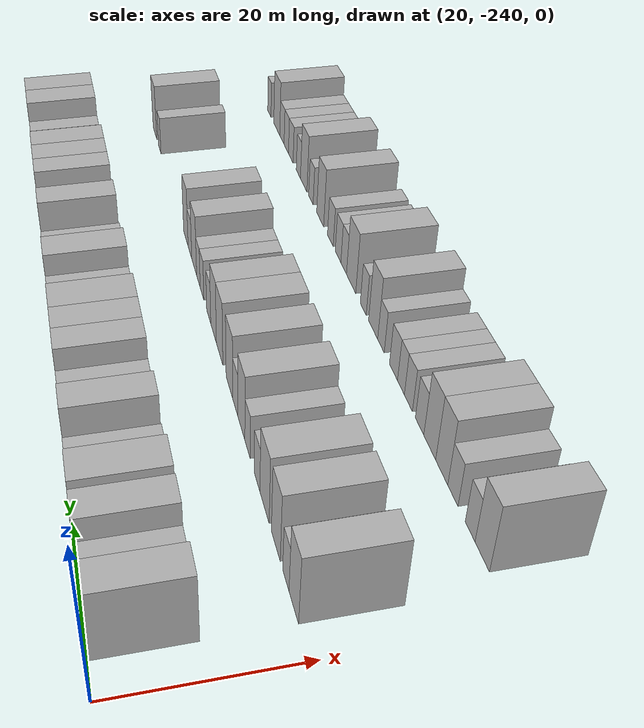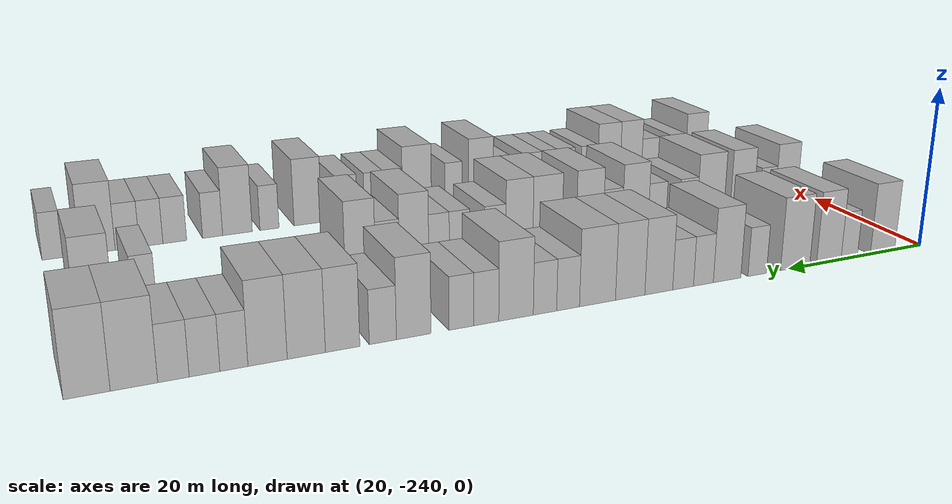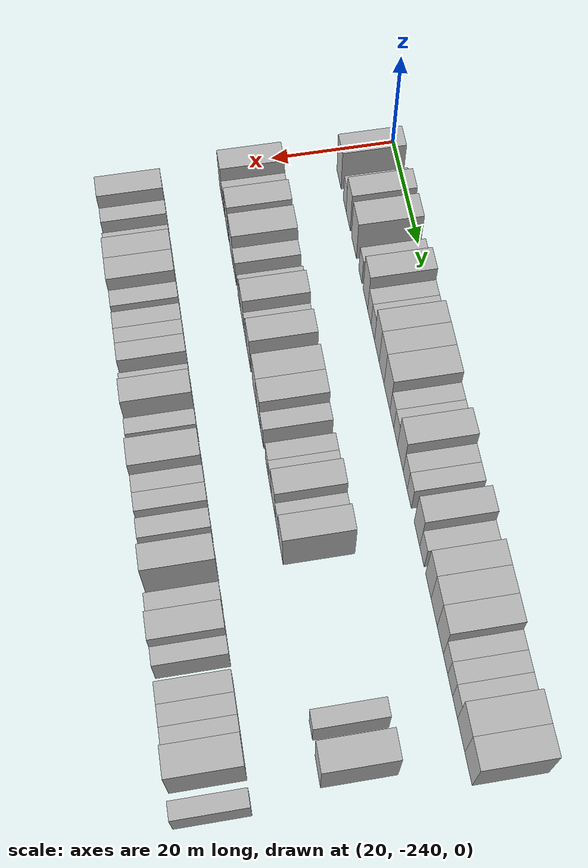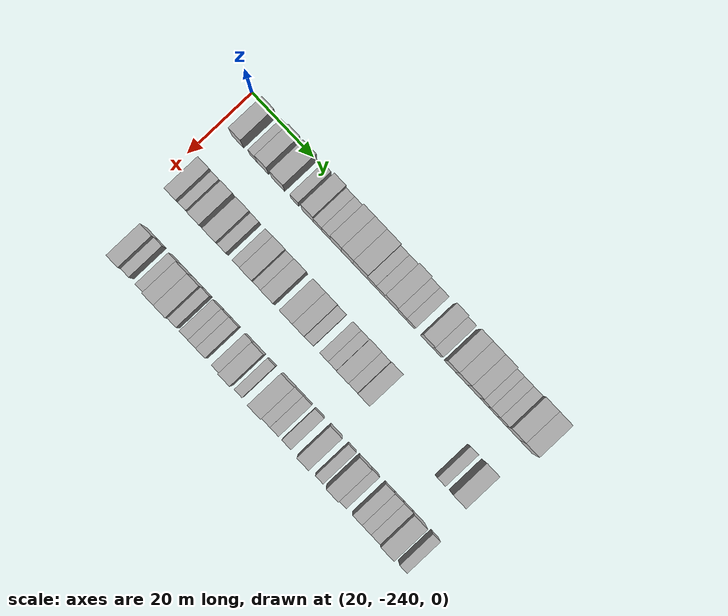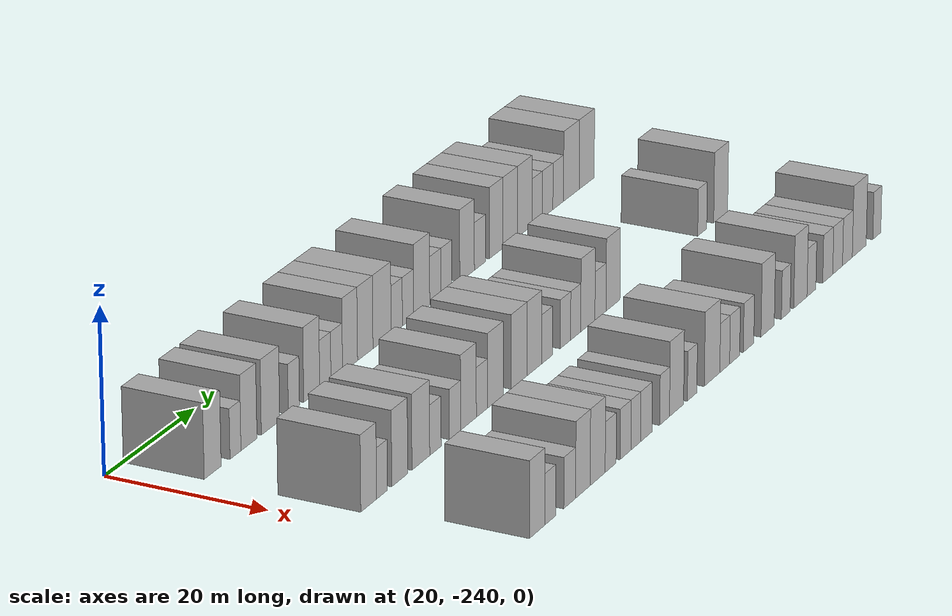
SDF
<sdf version="1.6">
 <world name="default">
  <model name="building_1">
   <static>1</static>
   <pose>25.0000 -234.1049 0 0.000000 0.000000 0.000000</pose>
   <link name="link">
    <pose>0 0 4.50 0 0 0</pose>
    <collision name="collision"><geometry><box><size>10.0000 3.7902 9.0000</size></box></geometry></collision>
    <visual name="visual">
     <cast_shadows>0</cast_shadows>
     <geometry><box><size>10.0000 3.7902 9.0000</size></box></geometry>
     <material>
      <script>
       <uri>model://HANNAS_wall/materials/scripts</uri>
       <uri>model://HANNAS_wall/materials/textures</uri>
       <name>vrc/HANNAS_wall</name>
      </script>
     </material>
    </visual>
   </link>
  </model>
  <model name="building_2">
   <static>1</static>
   <pose>25.0000 -228.9686 0 0.000000 0.000000 0.000000</pose>
   <link name="link">
    <pose>0 0 3.00 0 0 0</pose>
    <collision name="collision"><geometry><box><size>10.0000 2.4824 6.0000</size></box></geometry></collision>
    <visual name="visual">
     <cast_shadows>0</cast_shadows>
     <geometry><box><size>10.0000 2.4824 6.0000</size></box></geometry>
     <material>
      <script>
       <uri>model://HANNAS_wall/materials/scripts</uri>
       <uri>model://HANNAS_wall/materials/textures</uri>
       <name>vrc/HANNAS_wall</name>
      </script>
     </material>
    </visual>
   </link>
  </model>
  <model name="building_3">
   <static>1</static>
   <pose>25.0000 -225.8996 0 0.000000 0.000000 0.000000</pose>
   <link name="link">
    <pose>0 0 4.50 0 0 0</pose>
    <collision name="collision"><geometry><box><size>10.0000 3.6556 9.0000</size></box></geometry></collision>
    <visual name="visual">
     <cast_shadows>0</cast_shadows>
     <geometry><box><size>10.0000 3.6556 9.0000</size></box></geometry>
     <material>
      <script>
       <uri>model://HANNAS_wall/materials/scripts</uri>
       <uri>model://HANNAS_wall/materials/textures</uri>
       <name>vrc/HANNAS_wall</name>
      </script>
     </material>
    </visual>
   </link>
  </model>
  <model name="building_4">
   <static>1</static>
   <pose>25.0000 -220.9439 0 0.000000 0.000000 0.000000</pose>
   <link name="link">
    <pose>0 0 4.50 0 0 0</pose>
    <collision name="collision"><geometry><box><size>10.0000 4.2559 9.0000</size></box></geometry></collision>
    <visual name="visual">
     <cast_shadows>0</cast_shadows>
     <geometry><box><size>10.0000 4.2559 9.0000</size></box></geometry>
     <material>
      <script>
       <uri>model://HANNAS_wall/materials/scripts</uri>
       <uri>model://HANNAS_wall/materials/textures</uri>
       <name>vrc/HANNAS_wall</name>
      </script>
     </material>
    </visual>
   </link>
  </model>
  <model name="building_5">
   <static>1</static>
   <pose>25.0000 -215.5055 0 0.000000 0.000000 0.000000</pose>
   <link name="link">
    <pose>0 0 3.00 0 0 0</pose>
    <collision name="collision"><geometry><box><size>10.0000 2.6209 6.0000</size></box></geometry></collision>
    <visual name="visual">
     <cast_shadows>0</cast_shadows>
     <geometry><box><size>10.0000 2.6209 6.0000</size></box></geometry>
     <material>
      <script>
       <uri>model://HANNAS_wall/materials/scripts</uri>
       <uri>model://HANNAS_wall/materials/textures</uri>
       <name>vrc/HANNAS_wall</name>
      </script>
     </material>
    </visual>
   </link>
  </model>
  <model name="building_6">
   <static>1</static>
   <pose>25.0000 -211.3009 0 0.000000 0.000000 0.000000</pose>
   <link name="link">
    <pose>0 0 4.50 0 0 0</pose>
    <collision name="collision"><geometry><box><size>10.0000 3.7882 9.0000</size></box></geometry></collision>
    <visual name="visual">
     <cast_shadows>0</cast_shadows>
     <geometry><box><size>10.0000 3.7882 9.0000</size></box></geometry>
     <material>
      <script>
       <uri>model://HANNAS_wall/materials/scripts</uri>
       <uri>model://HANNAS_wall/materials/textures</uri>
       <name>vrc/HANNAS_wall</name>
      </script>
     </material>
    </visual>
   </link>
  </model>
  <model name="building_7">
   <static>1</static>
   <pose>25.0000 -208.0643 0 0.000000 0.000000 0.000000</pose>
   <link name="link">
    <pose>0 0 3.00 0 0 0</pose>
    <collision name="collision"><geometry><box><size>10.0000 2.6851 6.0000</size></box></geometry></collision>
    <visual name="visual">
     <cast_shadows>0</cast_shadows>
     <geometry><box><size>10.0000 2.6851 6.0000</size></box></geometry>
     <material>
      <script>
       <uri>model://HANNAS_wall/materials/scripts</uri>
       <uri>model://HANNAS_wall/materials/textures</uri>
       <name>vrc/HANNAS_wall</name>
      </script>
     </material>
    </visual>
   </link>
  </model>
  <model name="building_8">
   <static>1</static>
   <pose>25.0000 -205.3315 0 0.000000 0.000000 0.000000</pose>
   <link name="link">
    <pose>0 0 3.00 0 0 0</pose>
    <collision name="collision"><geometry><box><size>10.0000 2.7805 6.0000</size></box></geometry></collision>
    <visual name="visual">
     <cast_shadows>0</cast_shadows>
     <geometry><box><size>10.0000 2.7805 6.0000</size></box></geometry>
     <material>
      <script>
       <uri>model://HANNAS_wall/materials/scripts</uri>
       <uri>model://HANNAS_wall/materials/textures</uri>
       <name>vrc/HANNAS_wall</name>
      </script>
     </material>
    </visual>
   </link>
  </model>
  <model name="building_9">
   <static>1</static>
   <pose>25.0000 -202.1189 0 0.000000 0.000000 0.000000</pose>
   <link name="link">
    <pose>0 0 4.50 0 0 0</pose>
    <collision name="collision"><geometry><box><size>10.0000 3.6448 9.0000</size></box></geometry></collision>
    <visual name="visual">
     <cast_shadows>0</cast_shadows>
     <geometry><box><size>10.0000 3.6448 9.0000</size></box></geometry>
     <material>
      <script>
       <uri>model://HANNAS_wall/materials/scripts</uri>
       <uri>model://HANNAS_wall/materials/textures</uri>
       <name>vrc/HANNAS_wall</name>
      </script>
     </material>
    </visual>
   </link>
  </model>
  <model name="building_10">
   <static>1</static>
   <pose>25.0000 -198.4157 0 0.000000 0.000000 0.000000</pose>
   <link name="link">
    <pose>0 0 4.50 0 0 0</pose>
    <collision name="collision"><geometry><box><size>10.0000 3.7617 9.0000</size></box></geometry></collision>
    <visual name="visual">
     <cast_shadows>0</cast_shadows>
     <geometry><box><size>10.0000 3.7617 9.0000</size></box></geometry>
     <material>
      <script>
       <uri>model://HANNAS_wall/materials/scripts</uri>
       <uri>model://HANNAS_wall/materials/textures</uri>
       <name>vrc/HANNAS_wall</name>
      </script>
     </material>
    </visual>
   </link>
  </model>
  <model name="building_11">
   <static>1</static>
   <pose>25.0000 -194.2861 0 0.000000 0.000000 0.000000</pose>
   <link name="link">
    <pose>0 0 4.50 0 0 0</pose>
    <collision name="collision"><geometry><box><size>10.0000 4.4974 9.0000</size></box></geometry></collision>
    <visual name="visual">
     <cast_shadows>0</cast_shadows>
     <geometry><box><size>10.0000 4.4974 9.0000</size></box></geometry>
     <material>
      <script>
       <uri>model://HANNAS_wall/materials/scripts</uri>
       <uri>model://HANNAS_wall/materials/textures</uri>
       <name>vrc/HANNAS_wall</name>
      </script>
     </material>
    </visual>
   </link>
  </model>
  <model name="building_12">
   <static>1</static>
   <pose>25.0000 -190.6346 0 0.000000 0.000000 0.000000</pose>
   <link name="link">
    <pose>0 0 3.00 0 0 0</pose>
    <collision name="collision"><geometry><box><size>10.0000 2.8056 6.0000</size></box></geometry></collision>
    <visual name="visual">
     <cast_shadows>0</cast_shadows>
     <geometry><box><size>10.0000 2.8056 6.0000</size></box></geometry>
     <material>
      <script>
       <uri>model://HANNAS_wall/materials/scripts</uri>
       <uri>model://HANNAS_wall/materials/textures</uri>
       <name>vrc/HANNAS_wall</name>
      </script>
     </material>
    </visual>
   </link>
  </model>
  <model name="building_13">
   <static>1</static>
   <pose>25.0000 -187.8267 0 0.000000 0.000000 0.000000</pose>
   <link name="link">
    <pose>0 0 3.00 0 0 0</pose>
    <collision name="collision"><geometry><box><size>10.0000 2.8101 6.0000</size></box></geometry></collision>
    <visual name="visual">
     <cast_shadows>0</cast_shadows>
     <geometry><box><size>10.0000 2.8101 6.0000</size></box></geometry>
     <material>
      <script>
       <uri>model://HANNAS_wall/materials/scripts</uri>
       <uri>model://HANNAS_wall/materials/textures</uri>
       <name>vrc/HANNAS_wall</name>
      </script>
     </material>
    </visual>
   </link>
  </model>
  <model name="building_14">
   <static>1</static>
   <pose>25.0000 -184.3808 0 0.000000 0.000000 0.000000</pose>
   <link name="link">
    <pose>0 0 4.50 0 0 0</pose>
    <collision name="collision"><geometry><box><size>10.0000 4.0818 9.0000</size></box></geometry></collision>
    <visual name="visual">
     <cast_shadows>0</cast_shadows>
     <geometry><box><size>10.0000 4.0818 9.0000</size></box></geometry>
     <material>
      <script>
       <uri>model://HANNAS_wall/materials/scripts</uri>
       <uri>model://HANNAS_wall/materials/textures</uri>
       <name>vrc/HANNAS_wall</name>
      </script>
     </material>
    </visual>
   </link>
  </model>
  <model name="building_15">
   <static>1</static>
   <pose>25.0000 -180.9060 0 0.000000 0.000000 0.000000</pose>
   <link name="link">
    <pose>0 0 3.00 0 0 0</pose>
    <collision name="collision"><geometry><box><size>10.0000 2.8676 6.0000</size></box></geometry></collision>
    <visual name="visual">
     <cast_shadows>0</cast_shadows>
     <geometry><box><size>10.0000 2.8676 6.0000</size></box></geometry>
     <material>
      <script>
       <uri>model://HANNAS_wall/materials/scripts</uri>
       <uri>model://HANNAS_wall/materials/textures</uri>
       <name>vrc/HANNAS_wall</name>
      </script>
     </material>
    </visual>
   </link>
  </model>
  <model name="building_16">
   <static>1</static>
   <pose>25.0000 -178.0549 0 0.000000 0.000000 0.000000</pose>
   <link name="link">
    <pose>0 0 3.00 0 0 0</pose>
    <collision name="collision"><geometry><box><size>10.0000 2.8347 6.0000</size></box></geometry></collision>
    <visual name="visual">
     <cast_shadows>0</cast_shadows>
     <geometry><box><size>10.0000 2.8347 6.0000</size></box></geometry>
     <material>
      <script>
       <uri>model://HANNAS_wall/materials/scripts</uri>
       <uri>model://HANNAS_wall/materials/textures</uri>
       <name>vrc/HANNAS_wall</name>
      </script>
     </material>
    </visual>
   </link>
  </model>
  <model name="building_17">
   <static>1</static>
   <pose>25.0000 -172.7347 0 0.000000 0.000000 0.000000</pose>
   <link name="link">
    <pose>0 0 4.50 0 0 0</pose>
    <collision name="collision"><geometry><box><size>10.0000 3.8056 9.0000</size></box></geometry></collision>
    <visual name="visual">
     <cast_shadows>0</cast_shadows>
     <geometry><box><size>10.0000 3.8056 9.0000</size></box></geometry>
     <material>
      <script>
       <uri>model://HANNAS_wall/materials/scripts</uri>
       <uri>model://HANNAS_wall/materials/textures</uri>
       <name>vrc/HANNAS_wall</name>
      </script>
     </material>
    </visual>
   </link>
  </model>
  <model name="building_18">
   <static>1</static>
   <pose>25.0000 -169.3702 0 0.000000 0.000000 0.000000</pose>
   <link name="link">
    <pose>0 0 3.00 0 0 0</pose>
    <collision name="collision"><geometry><box><size>10.0000 2.9234 6.0000</size></box></geometry></collision>
    <visual name="visual">
     <cast_shadows>0</cast_shadows>
     <geometry><box><size>10.0000 2.9234 6.0000</size></box></geometry>
     <material>
      <script>
       <uri>model://HANNAS_wall/materials/scripts</uri>
       <uri>model://HANNAS_wall/materials/textures</uri>
       <name>vrc/HANNAS_wall</name>
      </script>
     </material>
    </visual>
   </link>
  </model>
  <model name="building_19">
   <static>1</static>
   <pose>25.0000 -165.1060 0 0.000000 0.000000 0.000000</pose>
   <link name="link">
    <pose>0 0 4.50 0 0 0</pose>
    <collision name="collision"><geometry><box><size>10.0000 3.6051 9.0000</size></box></geometry></collision>
    <visual name="visual">
     <cast_shadows>0</cast_shadows>
     <geometry><box><size>10.0000 3.6051 9.0000</size></box></geometry>
     <material>
      <script>
       <uri>model://HANNAS_wall/materials/scripts</uri>
       <uri>model://HANNAS_wall/materials/textures</uri>
       <name>vrc/HANNAS_wall</name>
      </script>
     </material>
    </visual>
   </link>
  </model>
  <model name="building_20">
   <static>1</static>
   <pose>25.0000 -161.3523 0 0.000000 0.000000 0.000000</pose>
   <link name="link">
    <pose>0 0 4.50 0 0 0</pose>
    <collision name="collision"><geometry><box><size>10.0000 3.9022 9.0000</size></box></geometry></collision>
    <visual name="visual">
     <cast_shadows>0</cast_shadows>
     <geometry><box><size>10.0000 3.9022 9.0000</size></box></geometry>
     <material>
      <script>
       <uri>model://HANNAS_wall/materials/scripts</uri>
       <uri>model://HANNAS_wall/materials/textures</uri>
       <name>vrc/HANNAS_wall</name>
      </script>
     </material>
    </visual>
   </link>
  </model>
  <model name="building_21">
   <static>1</static>
   <pose>25.0000 -157.4447 0 0.000000 0.000000 0.000000</pose>
   <link name="link">
    <pose>0 0 4.50 0 0 0</pose>
    <collision name="collision"><geometry><box><size>10.0000 3.9131 9.0000</size></box></geometry></collision>
    <visual name="visual">
     <cast_shadows>0</cast_shadows>
     <geometry><box><size>10.0000 3.9131 9.0000</size></box></geometry>
     <material>
      <script>
       <uri>model://HANNAS_wall/materials/scripts</uri>
       <uri>model://HANNAS_wall/materials/textures</uri>
       <name>vrc/HANNAS_wall</name>
      </script>
     </material>
    </visual>
   </link>
  </model>
  <model name="building_22">
   <static>1</static>
   <pose>25.0000 -154.1215 0 0.000000 0.000000 0.000000</pose>
   <link name="link">
    <pose>0 0 3.00 0 0 0</pose>
    <collision name="collision"><geometry><box><size>10.0000 2.7331 6.0000</size></box></geometry></collision>
    <visual name="visual">
     <cast_shadows>0</cast_shadows>
     <geometry><box><size>10.0000 2.7331 6.0000</size></box></geometry>
     <material>
      <script>
       <uri>model://HANNAS_wall/materials/scripts</uri>
       <uri>model://HANNAS_wall/materials/textures</uri>
       <name>vrc/HANNAS_wall</name>
      </script>
     </material>
    </visual>
   </link>
  </model>
  <model name="building_23">
   <static>1</static>
   <pose>25.0000 -151.2826 0 0.000000 0.000000 0.000000</pose>
   <link name="link">
    <pose>0 0 3.00 0 0 0</pose>
    <collision name="collision"><geometry><box><size>10.0000 2.9448 6.0000</size></box></geometry></collision>
    <visual name="visual">
     <cast_shadows>0</cast_shadows>
     <geometry><box><size>10.0000 2.9448 6.0000</size></box></geometry>
     <material>
      <script>
       <uri>model://HANNAS_wall/materials/scripts</uri>
       <uri>model://HANNAS_wall/materials/textures</uri>
       <name>vrc/HANNAS_wall</name>
      </script>
     </material>
    </visual>
   </link>
  </model>
  <model name="building_24">
   <static>1</static>
   <pose>25.0000 -148.3363 0 0.000000 0.000000 0.000000</pose>
   <link name="link">
    <pose>0 0 3.00 0 0 0</pose>
    <collision name="collision"><geometry><box><size>10.0000 2.9479 6.0000</size></box></geometry></collision>
    <visual name="visual">
     <cast_shadows>0</cast_shadows>
     <geometry><box><size>10.0000 2.9479 6.0000</size></box></geometry>
     <material>
      <script>
       <uri>model://HANNAS_wall/materials/scripts</uri>
       <uri>model://HANNAS_wall/materials/textures</uri>
       <name>vrc/HANNAS_wall</name>
      </script>
     </material>
    </visual>
   </link>
  </model>
  <model name="building_25">
   <static>1</static>
   <pose>25.0000 -144.6904 0 0.000000 0.000000 0.000000</pose>
   <link name="link">
    <pose>0 0 4.50 0 0 0</pose>
    <collision name="collision"><geometry><box><size>10.0000 4.3439 9.0000</size></box></geometry></collision>
    <visual name="visual">
     <cast_shadows>0</cast_shadows>
     <geometry><box><size>10.0000 4.3439 9.0000</size></box></geometry>
     <material>
      <script>
       <uri>model://HANNAS_wall/materials/scripts</uri>
       <uri>model://HANNAS_wall/materials/textures</uri>
       <name>vrc/HANNAS_wall</name>
      </script>
     </material>
    </visual>
   </link>
  </model>
  <model name="building_26">
   <static>1</static>
   <pose>25.0000 -140.4186 0 0.000000 0.000000 0.000000</pose>
   <link name="link">
    <pose>0 0 4.50 0 0 0</pose>
    <collision name="collision"><geometry><box><size>10.0000 4.1998 9.0000</size></box></geometry></collision>
    <visual name="visual">
     <cast_shadows>0</cast_shadows>
     <geometry><box><size>10.0000 4.1998 9.0000</size></box></geometry>
     <material>
      <script>
       <uri>model://HANNAS_wall/materials/scripts</uri>
       <uri>model://HANNAS_wall/materials/textures</uri>
       <name>vrc/HANNAS_wall</name>
      </script>
     </material>
    </visual>
   </link>
  </model>
  <model name="building_115">
   <static>1</static>
   <pose>44.0000 -234.1698 0 0.000000 0.000000 0.000000</pose>
   <link name="link">
    <pose>0 0 4.50 0 0 0</pose>
    <collision name="collision"><geometry><box><size>10.0000 3.6604 9.0000</size></box></geometry></collision>
    <visual name="visual">
     <cast_shadows>0</cast_shadows>
     <geometry><box><size>10.0000 3.6604 9.0000</size></box></geometry>
     <material>
      <script>
       <uri>model://HANNAS_wall/materials/scripts</uri>
       <uri>model://HANNAS_wall/materials/textures</uri>
       <name>vrc/HANNAS_wall</name>
      </script>
     </material>
    </visual>
   </link>
  </model>
  <model name="building_116">
   <static>1</static>
   <pose>44.0000 -231.0742 0 0.000000 0.000000 0.000000</pose>
   <link name="link">
    <pose>0 0 3.00 0 0 0</pose>
    <collision name="collision"><geometry><box><size>10.0000 2.5307 6.0000</size></box></geometry></collision>
    <visual name="visual">
     <cast_shadows>0</cast_shadows>
     <geometry><box><size>10.0000 2.5307 6.0000</size></box></geometry>
     <material>
      <script>
       <uri>model://HANNAS_wall/materials/scripts</uri>
       <uri>model://HANNAS_wall/materials/textures</uri>
       <name>vrc/HANNAS_wall</name>
      </script>
     </material>
    </visual>
   </link>
  </model>
  <model name="building_117">
   <static>1</static>
   <pose>44.0000 -226.9238 0 0.000000 0.000000 0.000000</pose>
   <link name="link">
    <pose>0 0 4.50 0 0 0</pose>
    <collision name="collision"><geometry><box><size>10.0000 3.7701 9.0000</size></box></geometry></collision>
    <visual name="visual">
     <cast_shadows>0</cast_shadows>
     <geometry><box><size>10.0000 3.7701 9.0000</size></box></geometry>
     <material>
      <script>
       <uri>model://HANNAS_wall/materials/scripts</uri>
       <uri>model://HANNAS_wall/materials/textures</uri>
       <name>vrc/HANNAS_wall</name>
      </script>
     </material>
    </visual>
   </link>
  </model>
  <model name="building_118">
   <static>1</static>
   <pose>44.0000 -221.9182 0 0.000000 0.000000 0.000000</pose>
   <link name="link">
    <pose>0 0 4.50 0 0 0</pose>
    <collision name="collision"><geometry><box><size>10.0000 4.2412 9.0000</size></box></geometry></collision>
    <visual name="visual">
     <cast_shadows>0</cast_shadows>
     <geometry><box><size>10.0000 4.2412 9.0000</size></box></geometry>
     <material>
      <script>
       <uri>model://HANNAS_wall/materials/scripts</uri>
       <uri>model://HANNAS_wall/materials/textures</uri>
       <name>vrc/HANNAS_wall</name>
      </script>
     </material>
    </visual>
   </link>
  </model>
  <model name="building_119">
   <static>1</static>
   <pose>44.0000 -218.4153 0 0.000000 0.000000 0.000000</pose>
   <link name="link">
    <pose>0 0 3.00 0 0 0</pose>
    <collision name="collision"><geometry><box><size>10.0000 2.7646 6.0000</size></box></geometry></collision>
    <visual name="visual">
     <cast_shadows>0</cast_shadows>
     <geometry><box><size>10.0000 2.7646 6.0000</size></box></geometry>
     <material>
      <script>
       <uri>model://HANNAS_wall/materials/scripts</uri>
       <uri>model://HANNAS_wall/materials/textures</uri>
       <name>vrc/HANNAS_wall</name>
      </script>
     </material>
    </visual>
   </link>
  </model>
  <model name="building_120">
   <static>1</static>
   <pose>44.0000 -213.6775 0 0.000000 0.000000 0.000000</pose>
   <link name="link">
    <pose>0 0 3.00 0 0 0</pose>
    <collision name="collision"><geometry><box><size>10.0000 2.7109 6.0000</size></box></geometry></collision>
    <visual name="visual">
     <cast_shadows>0</cast_shadows>
     <geometry><box><size>10.0000 2.7109 6.0000</size></box></geometry>
     <material>
      <script>
       <uri>model://HANNAS_wall/materials/scripts</uri>
       <uri>model://HANNAS_wall/materials/textures</uri>
       <name>vrc/HANNAS_wall</name>
      </script>
     </material>
    </visual>
   </link>
  </model>
  <model name="building_121">
   <static>1</static>
   <pose>44.0000 -210.3874 0 0.000000 0.000000 0.000000</pose>
   <link name="link">
    <pose>0 0 4.50 0 0 0</pose>
    <collision name="collision"><geometry><box><size>10.0000 3.8692 9.0000</size></box></geometry></collision>
    <visual name="visual">
     <cast_shadows>0</cast_shadows>
     <geometry><box><size>10.0000 3.8692 9.0000</size></box></geometry>
     <material>
      <script>
       <uri>model://HANNAS_wall/materials/scripts</uri>
       <uri>model://HANNAS_wall/materials/textures</uri>
       <name>vrc/HANNAS_wall</name>
      </script>
     </material>
    </visual>
   </link>
  </model>
  <model name="building_122">
   <static>1</static>
   <pose>44.0000 -207.0543 0 0.000000 0.000000 0.000000</pose>
   <link name="link">
    <pose>0 0 3.00 0 0 0</pose>
    <collision name="collision"><geometry><box><size>10.0000 2.7970 6.0000</size></box></geometry></collision>
    <visual name="visual">
     <cast_shadows>0</cast_shadows>
     <geometry><box><size>10.0000 2.7970 6.0000</size></box></geometry>
     <material>
      <script>
       <uri>model://HANNAS_wall/materials/scripts</uri>
       <uri>model://HANNAS_wall/materials/textures</uri>
       <name>vrc/HANNAS_wall</name>
      </script>
     </material>
    </visual>
   </link>
  </model>
  <model name="building_123">
   <static>1</static>
   <pose>44.0000 -203.7124 0 0.000000 0.000000 0.000000</pose>
   <link name="link">
    <pose>0 0 4.50 0 0 0</pose>
    <collision name="collision"><geometry><box><size>10.0000 3.8867 9.0000</size></box></geometry></collision>
    <visual name="visual">
     <cast_shadows>0</cast_shadows>
     <geometry><box><size>10.0000 3.8867 9.0000</size></box></geometry>
     <material>
      <script>
       <uri>model://HANNAS_wall/materials/scripts</uri>
       <uri>model://HANNAS_wall/materials/textures</uri>
       <name>vrc/HANNAS_wall</name>
      </script>
     </material>
    </visual>
   </link>
  </model>
  <model name="building_124">
   <static>1</static>
   <pose>44.0000 -197.7276 0 0.000000 0.000000 0.000000</pose>
   <link name="link">
    <pose>0 0 4.50 0 0 0</pose>
    <collision name="collision"><geometry><box><size>10.0000 4.0828 9.0000</size></box></geometry></collision>
    <visual name="visual">
     <cast_shadows>0</cast_shadows>
     <geometry><box><size>10.0000 4.0828 9.0000</size></box></geometry>
     <material>
      <script>
       <uri>model://HANNAS_wall/materials/scripts</uri>
       <uri>model://HANNAS_wall/materials/textures</uri>
       <name>vrc/HANNAS_wall</name>
      </script>
     </material>
    </visual>
   </link>
  </model>
  <model name="building_125">
   <static>1</static>
   <pose>44.0000 -193.8281 0 0.000000 0.000000 0.000000</pose>
   <link name="link">
    <pose>0 0 4.50 0 0 0</pose>
    <collision name="collision"><geometry><box><size>10.0000 3.7161 9.0000</size></box></geometry></collision>
    <visual name="visual">
     <cast_shadows>0</cast_shadows>
     <geometry><box><size>10.0000 3.7161 9.0000</size></box></geometry>
     <material>
      <script>
       <uri>model://HANNAS_wall/materials/scripts</uri>
       <uri>model://HANNAS_wall/materials/textures</uri>
       <name>vrc/HANNAS_wall</name>
      </script>
     </material>
    </visual>
   </link>
  </model>
  <model name="building_126">
   <static>1</static>
   <pose>44.0000 -190.5547 0 0.000000 0.000000 0.000000</pose>
   <link name="link">
    <pose>0 0 3.00 0 0 0</pose>
    <collision name="collision"><geometry><box><size>10.0000 2.8307 6.0000</size></box></geometry></collision>
    <visual name="visual">
     <cast_shadows>0</cast_shadows>
     <geometry><box><size>10.0000 2.8307 6.0000</size></box></geometry>
     <material>
      <script>
       <uri>model://HANNAS_wall/materials/scripts</uri>
       <uri>model://HANNAS_wall/materials/textures</uri>
       <name>vrc/HANNAS_wall</name>
      </script>
     </material>
    </visual>
   </link>
  </model>
  <model name="building_127">
   <static>1</static>
   <pose>44.0000 -185.8024 0 0.000000 0.000000 0.000000</pose>
   <link name="link">
    <pose>0 0 3.00 0 0 0</pose>
    <collision name="collision"><geometry><box><size>10.0000 2.6739 6.0000</size></box></geometry></collision>
    <visual name="visual">
     <cast_shadows>0</cast_shadows>
     <geometry><box><size>10.0000 2.6739 6.0000</size></box></geometry>
     <material>
      <script>
       <uri>model://HANNAS_wall/materials/scripts</uri>
       <uri>model://HANNAS_wall/materials/textures</uri>
       <name>vrc/HANNAS_wall</name>
      </script>
     </material>
    </visual>
   </link>
  </model>
  <model name="building_128">
   <static>1</static>
   <pose>44.0000 -183.1321 0 0.000000 0.000000 0.000000</pose>
   <link name="link">
    <pose>0 0 3.00 0 0 0</pose>
    <collision name="collision"><geometry><box><size>10.0000 2.6668 6.0000</size></box></geometry></collision>
    <visual name="visual">
     <cast_shadows>0</cast_shadows>
     <geometry><box><size>10.0000 2.6668 6.0000</size></box></geometry>
     <material>
      <script>
       <uri>model://HANNAS_wall/materials/scripts</uri>
       <uri>model://HANNAS_wall/materials/textures</uri>
       <name>vrc/HANNAS_wall</name>
      </script>
     </material>
    </visual>
   </link>
  </model>
  <model name="building_129">
   <static>1</static>
   <pose>44.0000 -179.9218 0 0.000000 0.000000 0.000000</pose>
   <link name="link">
    <pose>0 0 4.50 0 0 0</pose>
    <collision name="collision"><geometry><box><size>10.0000 3.7537 9.0000</size></box></geometry></collision>
    <visual name="visual">
     <cast_shadows>0</cast_shadows>
     <geometry><box><size>10.0000 3.7537 9.0000</size></box></geometry>
     <material>
      <script>
       <uri>model://HANNAS_wall/materials/scripts</uri>
       <uri>model://HANNAS_wall/materials/textures</uri>
       <name>vrc/HANNAS_wall</name>
      </script>
     </material>
    </visual>
   </link>
  </model>
  <model name="building_130">
   <static>1</static>
   <pose>44.0000 -176.5550 0 0.000000 0.000000 0.000000</pose>
   <link name="link">
    <pose>0 0 3.00 0 0 0</pose>
    <collision name="collision"><geometry><box><size>10.0000 2.9799 6.0000</size></box></geometry></collision>
    <visual name="visual">
     <cast_shadows>0</cast_shadows>
     <geometry><box><size>10.0000 2.9799 6.0000</size></box></geometry>
     <material>
      <script>
       <uri>model://HANNAS_wall/materials/scripts</uri>
       <uri>model://HANNAS_wall/materials/textures</uri>
       <name>vrc/HANNAS_wall</name>
      </script>
     </material>
    </visual>
   </link>
  </model>
  <model name="building_131">
   <static>1</static>
   <pose>44.0000 -173.1998 0 0.000000 0.000000 0.000000</pose>
   <link name="link">
    <pose>0 0 4.50 0 0 0</pose>
    <collision name="collision"><geometry><box><size>10.0000 3.7306 9.0000</size></box></geometry></collision>
    <visual name="visual">
     <cast_shadows>0</cast_shadows>
     <geometry><box><size>10.0000 3.7306 9.0000</size></box></geometry>
     <material>
      <script>
       <uri>model://HANNAS_wall/materials/scripts</uri>
       <uri>model://HANNAS_wall/materials/textures</uri>
       <name>vrc/HANNAS_wall</name>
      </script>
     </material>
    </visual>
   </link>
  </model>
  <model name="building_132">
   <static>1</static>
   <pose>44.0000 -148.4813 0 0.000000 0.000000 0.000000</pose>
   <link name="link">
    <pose>0 0 3.00 0 0 0</pose>
    <collision name="collision"><geometry><box><size>10.0000 2.5688 6.0000</size></box></geometry></collision>
    <visual name="visual">
     <cast_shadows>0</cast_shadows>
     <geometry><box><size>10.0000 2.5688 6.0000</size></box></geometry>
     <material>
      <script>
       <uri>model://HANNAS_wall/materials/scripts</uri>
       <uri>model://HANNAS_wall/materials/textures</uri>
       <name>vrc/HANNAS_wall</name>
      </script>
     </material>
    </visual>
   </link>
  </model>
  <model name="building_133">
   <static>1</static>
   <pose>44.0000 -143.1793 0 0.000000 0.000000 0.000000</pose>
   <link name="link">
    <pose>0 0 4.50 0 0 0</pose>
    <collision name="collision"><geometry><box><size>10.0000 4.0354 9.0000</size></box></geometry></collision>
    <visual name="visual">
     <cast_shadows>0</cast_shadows>
     <geometry><box><size>10.0000 4.0354 9.0000</size></box></geometry>
     <material>
      <script>
       <uri>model://HANNAS_wall/materials/scripts</uri>
       <uri>model://HANNAS_wall/materials/textures</uri>
       <name>vrc/HANNAS_wall</name>
      </script>
     </material>
    </visual>
   </link>
  </model>
  <model name="building_231">
   <static>1</static>
   <pose>63.0000 -232.1592 0 0.000000 0.000000 0.000000</pose>
   <link name="link">
    <pose>0 0 4.50 0 0 0</pose>
    <collision name="collision"><geometry><box><size>10.0000 3.6816 9.0000</size></box></geometry></collision>
    <visual name="visual">
     <cast_shadows>0</cast_shadows>
     <geometry><box><size>10.0000 3.6816 9.0000</size></box></geometry>
     <material>
      <script>
       <uri>model://HANNAS_wall/materials/scripts</uri>
       <uri>model://HANNAS_wall/materials/textures</uri>
       <name>vrc/HANNAS_wall</name>
      </script>
     </material>
    </visual>
   </link>
  </model>
  <model name="building_232">
   <static>1</static>
   <pose>63.0000 -229.0123 0 0.000000 0.000000 0.000000</pose>
   <link name="link">
    <pose>0 0 3.00 0 0 0</pose>
    <collision name="collision"><geometry><box><size>10.0000 2.6123 6.0000</size></box></geometry></collision>
    <visual name="visual">
     <cast_shadows>0</cast_shadows>
     <geometry><box><size>10.0000 2.6123 6.0000</size></box></geometry>
     <material>
      <script>
       <uri>model://HANNAS_wall/materials/scripts</uri>
       <uri>model://HANNAS_wall/materials/textures</uri>
       <name>vrc/HANNAS_wall</name>
      </script>
     </material>
    </visual>
   </link>
  </model>
  <model name="building_233">
   <static>1</static>
   <pose>63.0000 -224.2429 0 0.000000 0.000000 0.000000</pose>
   <link name="link">
    <pose>0 0 3.00 0 0 0</pose>
    <collision name="collision"><geometry><box><size>10.0000 2.9264 6.0000</size></box></geometry></collision>
    <visual name="visual">
     <cast_shadows>0</cast_shadows>
     <geometry><box><size>10.0000 2.9264 6.0000</size></box></geometry>
     <material>
      <script>
       <uri>model://HANNAS_wall/materials/scripts</uri>
       <uri>model://HANNAS_wall/materials/textures</uri>
       <name>vrc/HANNAS_wall</name>
      </script>
     </material>
    </visual>
   </link>
  </model>
  <model name="building_234">
   <static>1</static>
   <pose>63.0000 -220.9704 0 0.000000 0.000000 0.000000</pose>
   <link name="link">
    <pose>0 0 4.50 0 0 0</pose>
    <collision name="collision"><geometry><box><size>10.0000 3.6186 9.0000</size></box></geometry></collision>
    <visual name="visual">
     <cast_shadows>0</cast_shadows>
     <geometry><box><size>10.0000 3.6186 9.0000</size></box></geometry>
     <material>
      <script>
       <uri>model://HANNAS_wall/materials/scripts</uri>
       <uri>model://HANNAS_wall/materials/textures</uri>
       <name>vrc/HANNAS_wall</name>
      </script>
     </material>
    </visual>
   </link>
  </model>
  <model name="building_235">
   <static>1</static>
   <pose>63.0000 -217.2883 0 0.000000 0.000000 0.000000</pose>
   <link name="link">
    <pose>0 0 4.50 0 0 0</pose>
    <collision name="collision"><geometry><box><size>10.0000 3.7454 9.0000</size></box></geometry></collision>
    <visual name="visual">
     <cast_shadows>0</cast_shadows>
     <geometry><box><size>10.0000 3.7454 9.0000</size></box></geometry>
     <material>
      <script>
       <uri>model://HANNAS_wall/materials/scripts</uri>
       <uri>model://HANNAS_wall/materials/textures</uri>
       <name>vrc/HANNAS_wall</name>
      </script>
     </material>
    </visual>
   </link>
  </model>
  <model name="building_236">
   <static>1</static>
   <pose>63.0000 -214.0309 0 0.000000 0.000000 0.000000</pose>
   <link name="link">
    <pose>0 0 3.00 0 0 0</pose>
    <collision name="collision"><geometry><box><size>10.0000 2.7695 6.0000</size></box></geometry></collision>
    <visual name="visual">
     <cast_shadows>0</cast_shadows>
     <geometry><box><size>10.0000 2.7695 6.0000</size></box></geometry>
     <material>
      <script>
       <uri>model://HANNAS_wall/materials/scripts</uri>
       <uri>model://HANNAS_wall/materials/textures</uri>
       <name>vrc/HANNAS_wall</name>
      </script>
     </material>
    </visual>
   </link>
  </model>
  <model name="building_237">
   <static>1</static>
   <pose>63.0000 -210.2582 0 0.000000 0.000000 0.000000</pose>
   <link name="link">
    <pose>0 0 3.00 0 0 0</pose>
    <collision name="collision"><geometry><box><size>10.0000 2.7758 6.0000</size></box></geometry></collision>
    <visual name="visual">
     <cast_shadows>0</cast_shadows>
     <geometry><box><size>10.0000 2.7758 6.0000</size></box></geometry>
     <material>
      <script>
       <uri>model://HANNAS_wall/materials/scripts</uri>
       <uri>model://HANNAS_wall/materials/textures</uri>
       <name>vrc/HANNAS_wall</name>
      </script>
     </material>
    </visual>
   </link>
  </model>
  <model name="building_238">
   <static>1</static>
   <pose>63.0000 -207.6391 0 0.000000 0.000000 0.000000</pose>
   <link name="link">
    <pose>0 0 3.00 0 0 0</pose>
    <collision name="collision"><geometry><box><size>10.0000 2.4623 6.0000</size></box></geometry></collision>
    <visual name="visual">
     <cast_shadows>0</cast_shadows>
     <geometry><box><size>10.0000 2.4623 6.0000</size></box></geometry>
     <material>
      <script>
       <uri>model://HANNAS_wall/materials/scripts</uri>
       <uri>model://HANNAS_wall/materials/textures</uri>
       <name>vrc/HANNAS_wall</name>
      </script>
     </material>
    </visual>
   </link>
  </model>
  <model name="building_239">
   <static>1</static>
   <pose>63.0000 -204.9163 0 0.000000 0.000000 0.000000</pose>
   <link name="link">
    <pose>0 0 3.00 0 0 0</pose>
    <collision name="collision"><geometry><box><size>10.0000 2.9834 6.0000</size></box></geometry></collision>
    <visual name="visual">
     <cast_shadows>0</cast_shadows>
     <geometry><box><size>10.0000 2.9834 6.0000</size></box></geometry>
     <material>
      <script>
       <uri>model://HANNAS_wall/materials/scripts</uri>
       <uri>model://HANNAS_wall/materials/textures</uri>
       <name>vrc/HANNAS_wall</name>
      </script>
     </material>
    </visual>
   </link>
  </model>
  <model name="building_240">
   <static>1</static>
   <pose>63.0000 -200.1450 0 0.000000 0.000000 0.000000</pose>
   <link name="link">
    <pose>0 0 3.00 0 0 0</pose>
    <collision name="collision"><geometry><box><size>10.0000 2.5592 6.0000</size></box></geometry></collision>
    <visual name="visual">
     <cast_shadows>0</cast_shadows>
     <geometry><box><size>10.0000 2.5592 6.0000</size></box></geometry>
     <material>
      <script>
       <uri>model://HANNAS_wall/materials/scripts</uri>
       <uri>model://HANNAS_wall/materials/textures</uri>
       <name>vrc/HANNAS_wall</name>
      </script>
     </material>
    </visual>
   </link>
  </model>
  <model name="building_241">
   <static>1</static>
   <pose>63.0000 -197.0046 0 0.000000 0.000000 0.000000</pose>
   <link name="link">
    <pose>0 0 4.50 0 0 0</pose>
    <collision name="collision"><geometry><box><size>10.0000 3.7216 9.0000</size></box></geometry></collision>
    <visual name="visual">
     <cast_shadows>0</cast_shadows>
     <geometry><box><size>10.0000 3.7216 9.0000</size></box></geometry>
     <material>
      <script>
       <uri>model://HANNAS_wall/materials/scripts</uri>
       <uri>model://HANNAS_wall/materials/textures</uri>
       <name>vrc/HANNAS_wall</name>
      </script>
     </material>
    </visual>
   </link>
  </model>
  <model name="building_242">
   <static>1</static>
   <pose>63.0000 -192.8777 0 0.000000 0.000000 0.000000</pose>
   <link name="link">
    <pose>0 0 3.00 0 0 0</pose>
    <collision name="collision"><geometry><box><size>10.0000 2.5321 6.0000</size></box></geometry></collision>
    <visual name="visual">
     <cast_shadows>0</cast_shadows>
     <geometry><box><size>10.0000 2.5321 6.0000</size></box></geometry>
     <material>
      <script>
       <uri>model://HANNAS_wall/materials/scripts</uri>
       <uri>model://HANNAS_wall/materials/textures</uri>
       <name>vrc/HANNAS_wall</name>
      </script>
     </material>
    </visual>
   </link>
  </model>
  <model name="building_243">
   <static>1</static>
   <pose>63.0000 -187.5157 0 0.000000 0.000000 0.000000</pose>
   <link name="link">
    <pose>0 0 4.50 0 0 0</pose>
    <collision name="collision"><geometry><box><size>10.0000 4.1919 9.0000</size></box></geometry></collision>
    <visual name="visual">
     <cast_shadows>0</cast_shadows>
     <geometry><box><size>10.0000 4.1919 9.0000</size></box></geometry>
     <material>
      <script>
       <uri>model://HANNAS_wall/materials/scripts</uri>
       <uri>model://HANNAS_wall/materials/textures</uri>
       <name>vrc/HANNAS_wall</name>
      </script>
     </material>
    </visual>
   </link>
  </model>
  <model name="building_244">
   <static>1</static>
   <pose>63.0000 -184.0851 0 0.000000 0.000000 0.000000</pose>
   <link name="link">
    <pose>0 0 3.00 0 0 0</pose>
    <collision name="collision"><geometry><box><size>10.0000 2.6694 6.0000</size></box></geometry></collision>
    <visual name="visual">
     <cast_shadows>0</cast_shadows>
     <geometry><box><size>10.0000 2.6694 6.0000</size></box></geometry>
     <material>
      <script>
       <uri>model://HANNAS_wall/materials/scripts</uri>
       <uri>model://HANNAS_wall/materials/textures</uri>
       <name>vrc/HANNAS_wall</name>
      </script>
     </material>
    </visual>
   </link>
  </model>
  <model name="building_245">
   <static>1</static>
   <pose>63.0000 -181.3725 0 0.000000 0.000000 0.000000</pose>
   <link name="link">
    <pose>0 0 3.00 0 0 0</pose>
    <collision name="collision"><geometry><box><size>10.0000 2.7557 6.0000</size></box></geometry></collision>
    <visual name="visual">
     <cast_shadows>0</cast_shadows>
     <geometry><box><size>10.0000 2.7557 6.0000</size></box></geometry>
     <material>
      <script>
       <uri>model://HANNAS_wall/materials/scripts</uri>
       <uri>model://HANNAS_wall/materials/textures</uri>
       <name>vrc/HANNAS_wall</name>
      </script>
     </material>
    </visual>
   </link>
  </model>
  <model name="building_246">
   <static>1</static>
   <pose>63.0000 -177.5399 0 0.000000 0.000000 0.000000</pose>
   <link name="link">
    <pose>0 0 3.00 0 0 0</pose>
    <collision name="collision"><geometry><box><size>10.0000 2.9096 6.0000</size></box></geometry></collision>
    <visual name="visual">
     <cast_shadows>0</cast_shadows>
     <geometry><box><size>10.0000 2.9096 6.0000</size></box></geometry>
     <material>
      <script>
       <uri>model://HANNAS_wall/materials/scripts</uri>
       <uri>model://HANNAS_wall/materials/textures</uri>
       <name>vrc/HANNAS_wall</name>
      </script>
     </material>
    </visual>
   </link>
  </model>
  <model name="building_247">
   <static>1</static>
   <pose>63.0000 -172.2165 0 0.000000 0.000000 0.000000</pose>
   <link name="link">
    <pose>0 0 4.50 0 0 0</pose>
    <collision name="collision"><geometry><box><size>10.0000 3.7370 9.0000</size></box></geometry></collision>
    <visual name="visual">
     <cast_shadows>0</cast_shadows>
     <geometry><box><size>10.0000 3.7370 9.0000</size></box></geometry>
     <material>
      <script>
       <uri>model://HANNAS_wall/materials/scripts</uri>
       <uri>model://HANNAS_wall/materials/textures</uri>
       <name>vrc/HANNAS_wall</name>
      </script>
     </material>
    </visual>
   </link>
  </model>
  <model name="building_248">
   <static>1</static>
   <pose>63.0000 -167.0934 0 0.000000 0.000000 0.000000</pose>
   <link name="link">
    <pose>0 0 3.00 0 0 0</pose>
    <collision name="collision"><geometry><box><size>10.0000 2.5092 6.0000</size></box></geometry></collision>
    <visual name="visual">
     <cast_shadows>0</cast_shadows>
     <geometry><box><size>10.0000 2.5092 6.0000</size></box></geometry>
     <material>
      <script>
       <uri>model://HANNAS_wall/materials/scripts</uri>
       <uri>model://HANNAS_wall/materials/textures</uri>
       <name>vrc/HANNAS_wall</name>
      </script>
     </material>
    </visual>
   </link>
  </model>
  <model name="building_249">
   <static>1</static>
   <pose>63.0000 -162.9278 0 0.000000 0.000000 0.000000</pose>
   <link name="link">
    <pose>0 0 4.50 0 0 0</pose>
    <collision name="collision"><geometry><box><size>10.0000 3.8221 9.0000</size></box></geometry></collision>
    <visual name="visual">
     <cast_shadows>0</cast_shadows>
     <geometry><box><size>10.0000 3.8221 9.0000</size></box></geometry>
     <material>
      <script>
       <uri>model://HANNAS_wall/materials/scripts</uri>
       <uri>model://HANNAS_wall/materials/textures</uri>
       <name>vrc/HANNAS_wall</name>
      </script>
     </material>
    </visual>
   </link>
  </model>
  <model name="building_250">
   <static>1</static>
   <pose>63.0000 -159.7439 0 0.000000 0.000000 0.000000</pose>
   <link name="link">
    <pose>0 0 3.00 0 0 0</pose>
    <collision name="collision"><geometry><box><size>10.0000 2.5456 6.0000</size></box></geometry></collision>
    <visual name="visual">
     <cast_shadows>0</cast_shadows>
     <geometry><box><size>10.0000 2.5456 6.0000</size></box></geometry>
     <material>
      <script>
       <uri>model://HANNAS_wall/materials/scripts</uri>
       <uri>model://HANNAS_wall/materials/textures</uri>
       <name>vrc/HANNAS_wall</name>
      </script>
     </material>
    </visual>
   </link>
  </model>
  <model name="building_251">
   <static>1</static>
   <pose>63.0000 -155.0025 0 0.000000 0.000000 0.000000</pose>
   <link name="link">
    <pose>0 0 3.00 0 0 0</pose>
    <collision name="collision"><geometry><box><size>10.0000 2.9371 6.0000</size></box></geometry></collision>
    <visual name="visual">
     <cast_shadows>0</cast_shadows>
     <geometry><box><size>10.0000 2.9371 6.0000</size></box></geometry>
     <material>
      <script>
       <uri>model://HANNAS_wall/materials/scripts</uri>
       <uri>model://HANNAS_wall/materials/textures</uri>
       <name>vrc/HANNAS_wall</name>
      </script>
     </material>
    </visual>
   </link>
  </model>
  <model name="building_252">
   <static>1</static>
   <pose>63.0000 -152.0969 0 0.000000 0.000000 0.000000</pose>
   <link name="link">
    <pose>0 0 3.00 0 0 0</pose>
    <collision name="collision"><geometry><box><size>10.0000 2.8739 6.0000</size></box></geometry></collision>
    <visual name="visual">
     <cast_shadows>0</cast_shadows>
     <geometry><box><size>10.0000 2.8739 6.0000</size></box></geometry>
     <material>
      <script>
       <uri>model://HANNAS_wall/materials/scripts</uri>
       <uri>model://HANNAS_wall/materials/textures</uri>
       <name>vrc/HANNAS_wall</name>
      </script>
     </material>
    </visual>
   </link>
  </model>
  <model name="building_253">
   <static>1</static>
   <pose>63.0000 -149.2112 0 0.000000 0.000000 0.000000</pose>
   <link name="link">
    <pose>0 0 3.00 0 0 0</pose>
    <collision name="collision"><geometry><box><size>10.0000 2.8977 6.0000</size></box></geometry></collision>
    <visual name="visual">
     <cast_shadows>0</cast_shadows>
     <geometry><box><size>10.0000 2.8977 6.0000</size></box></geometry>
     <material>
      <script>
       <uri>model://HANNAS_wall/materials/scripts</uri>
       <uri>model://HANNAS_wall/materials/textures</uri>
       <name>vrc/HANNAS_wall</name>
      </script>
     </material>
    </visual>
   </link>
  </model>
  <model name="building_254">
   <static>1</static>
   <pose>63.0000 -145.6833 0 0.000000 0.000000 0.000000</pose>
   <link name="link">
    <pose>0 0 4.50 0 0 0</pose>
    <collision name="collision"><geometry><box><size>10.0000 4.1580 9.0000</size></box></geometry></collision>
    <visual name="visual">
     <cast_shadows>0</cast_shadows>
     <geometry><box><size>10.0000 4.1580 9.0000</size></box></geometry>
     <material>
      <script>
       <uri>model://HANNAS_wall/materials/scripts</uri>
       <uri>model://HANNAS_wall/materials/textures</uri>
       <name>vrc/HANNAS_wall</name>
      </script>
     </material>
    </visual>
   </link>
  </model>
  <model name="building_255">
   <static>1</static>
   <pose>63.0000 -140.4005 0 0.000000 0.000000 0.000000</pose>
   <link name="link">
    <pose>0 0 3.00 0 0 0</pose>
    <collision name="collision"><geometry><box><size>10.0000 2.4077 6.0000</size></box></geometry></collision>
    <visual name="visual">
     <cast_shadows>0</cast_shadows>
     <geometry><box><size>10.0000 2.4077 6.0000</size></box></geometry>
     <material>
      <script>
       <uri>model://HANNAS_wall/materials/scripts</uri>
       <uri>model://HANNAS_wall/materials/textures</uri>
       <name>vrc/HANNAS_wall</name>
      </script>
     </material>
    </visual>
   </link>
  </model>
 </world>
</sdf>
